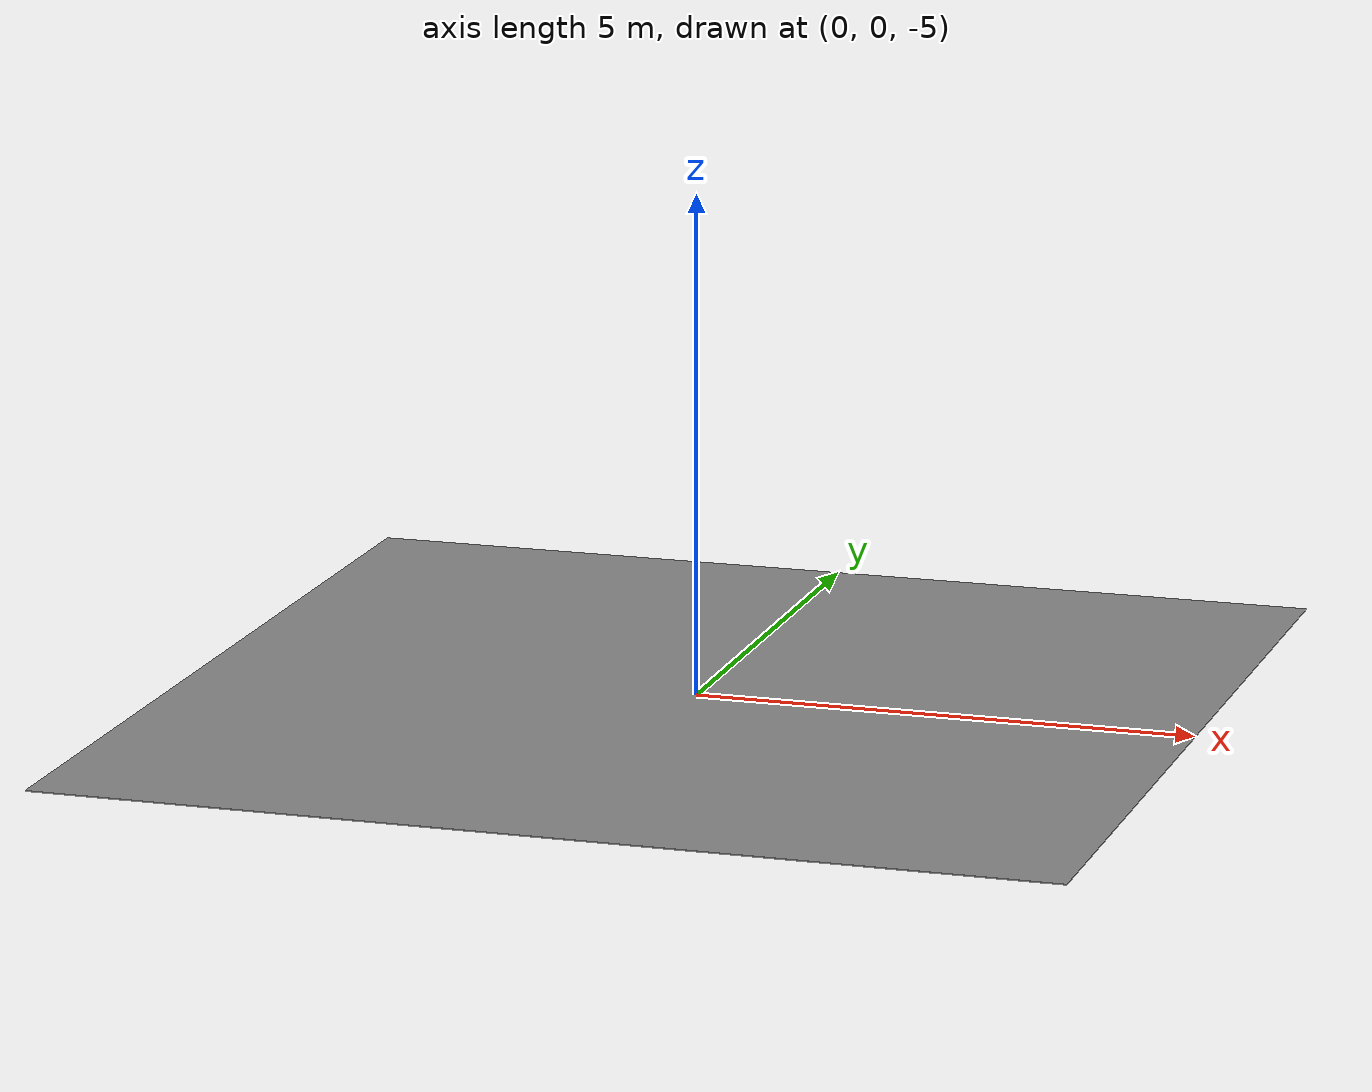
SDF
<?xml version='1.0'?>
<sdf version='1.5'>
  <model name='collision_tank'>
    <link name='link_0'>
      <pose frame=''>0 0 0 0 -0 0</pose>
      <inertial>
        <mass>1</mass>
        <pose frame=''>0 0 0 0 -0 0</pose>
        <inertia>
          <ixx>1</ixx>
          <ixy>0</ixy>
          <ixz>0</ixz>
          <iyy>1</iyy>
          <iyz>0</iyz>
          <izz>1</izz>
        </inertia>
      </inertial>
      <self_collide>0</self_collide>
      <kinematic>0</kinematic>
      <gravity>1</gravity>
      <visual name='visual'>
        <pose frame=''>0 0 -5.005 0 -0 0</pose>
        <geometry>
          <box>
            <size>10.02 10.02 0.01</size>
          </box>
        </geometry>
        <material>
          <lighting>1</lighting>
          <script>
            <uri>file://media/materials/scripts/gazebo.material</uri>
            <name>Gazebo/Grey</name>
          </script>
          <ambient>0.3 0.3 0.3 1</ambient>
          <diffuse>0.7 0.7 0.7 1</diffuse>
          <specular>0.01 0.01 0.01 1</specular>
          <emissive>0 0 0 1</emissive>
          <shader type='vertex'>
            <normal_map>__default__</normal_map>
          </shader>
        </material>
        <cast_shadows>1</cast_shadows>
        <transparency>0</transparency>
      </visual>
      <collision name='collision_2'>
        <laser_retro>0</laser_retro>
        <max_contacts>10</max_contacts>
        <pose frame=''>0 5.005 0 1.5708 -0 0</pose>
        <geometry>
          <box>
            <size>10.02 10.02 0.01</size>
          </box>
        </geometry>
        <surface>
          <friction>
            <ode>
              <mu>1</mu>
              <mu2>1</mu2>
              <fdir1>0 0 0</fdir1>
              <slip1>0</slip1>
              <slip2>0</slip2>
            </ode>
          </friction>
          <bounce>
            <restitution_coefficient>0</restitution_coefficient>
            <threshold>1e+06</threshold>
          </bounce>
          <contact>
            <collide_without_contact>0</collide_without_contact>
            <collide_without_contact_bitmask>1</collide_without_contact_bitmask>
            <collide_bitmask>1</collide_bitmask>
            <ode>
              <soft_cfm>0</soft_cfm>
              <soft_erp>0.2</soft_erp>
              <kp>1e+13</kp>
              <kd>1</kd>
              <max_vel>0.01</max_vel>
              <min_depth>0</min_depth>
            </ode>
            <bullet>
              <split_impulse>1</split_impulse>
              <split_impulse_penetration_threshold>-0.01</split_impulse_penetration_threshold>
              <soft_cfm>0</soft_cfm>
              <soft_erp>0.2</soft_erp>
              <kp>1e+13</kp>
              <kd>1</kd>
            </bullet>
          </contact>
        </surface>
      </collision>
      <collision name='collision_1'>
        <laser_retro>0</laser_retro>
        <max_contacts>10</max_contacts>
        <pose frame=''>-5.005 0 0 3.14159 1.57079 3.14159</pose>
        <geometry>
          <box>
            <size>10.02 10.02 0.01</size>
          </box>
        </geometry>
        <surface>
          <friction>
            <ode>
              <mu>1</mu>
              <mu2>1</mu2>
              <fdir1>0 0 0</fdir1>
              <slip1>0</slip1>
              <slip2>0</slip2>
            </ode>
          </friction>
          <bounce>
            <restitution_coefficient>0</restitution_coefficient>
            <threshold>1e+06</threshold>
          </bounce>
          <contact>
            <collide_without_contact>0</collide_without_contact>
            <collide_without_contact_bitmask>1</collide_without_contact_bitmask>
            <collide_bitmask>1</collide_bitmask>
            <ode>
              <soft_cfm>0</soft_cfm>
              <soft_erp>0.2</soft_erp>
              <kp>1e+13</kp>
              <kd>1</kd>
              <max_vel>0.01</max_vel>
              <min_depth>0</min_depth>
            </ode>
            <bullet>
              <split_impulse>1</split_impulse>
              <split_impulse_penetration_threshold>-0.01</split_impulse_penetration_threshold>
              <soft_cfm>0</soft_cfm>
              <soft_erp>0.2</soft_erp>
              <kp>1e+13</kp>
              <kd>1</kd>
            </bullet>
          </contact>
        </surface>
      </collision>
      <collision name='collision_3'>
        <laser_retro>0</laser_retro>
        <max_contacts>10</max_contacts>
        <pose frame=''>0 -5.005 0 1.5708 -0 0</pose>
        <geometry>
          <box>
            <size>10.02 10.02 0.01</size>
          </box>
        </geometry>
        <surface>
          <friction>
            <ode>
              <mu>1</mu>
              <mu2>1</mu2>
              <fdir1>0 0 0</fdir1>
              <slip1>0</slip1>
              <slip2>0</slip2>
            </ode>
          </friction>
          <bounce>
            <restitution_coefficient>0</restitution_coefficient>
            <threshold>1e+06</threshold>
          </bounce>
          <contact>
            <collide_without_contact>0</collide_without_contact>
            <collide_without_contact_bitmask>1</collide_without_contact_bitmask>
            <collide_bitmask>1</collide_bitmask>
            <ode>
              <soft_cfm>0</soft_cfm>
              <soft_erp>0.2</soft_erp>
              <kp>1e+13</kp>
              <kd>1</kd>
              <max_vel>0.01</max_vel>
              <min_depth>0</min_depth>
            </ode>
            <bullet>
              <split_impulse>1</split_impulse>
              <split_impulse_penetration_threshold>-0.01</split_impulse_penetration_threshold>
              <soft_cfm>0</soft_cfm>
              <soft_erp>0.2</soft_erp>
              <kp>1e+13</kp>
              <kd>1</kd>
            </bullet>
          </contact>
        </surface>
      </collision>
      <collision name='collision'>
        <laser_retro>0</laser_retro>
        <max_contacts>10</max_contacts>
        <pose frame=''>0 0 -5.005 0 -0 0</pose>
        <geometry>
          <box>
            <size>10.02 10.02 0.01</size>
          </box>
        </geometry>
        <surface>
          <friction>
            <ode>
              <mu>1</mu>
              <mu2>1</mu2>
              <fdir1>0 0 0</fdir1>
              <slip1>0</slip1>
              <slip2>0</slip2>
            </ode>
          </friction>
          <bounce>
            <restitution_coefficient>0</restitution_coefficient>
            <threshold>1e+06</threshold>
          </bounce>
          <contact>
            <collide_without_contact>0</collide_without_contact>
            <collide_without_contact_bitmask>1</collide_without_contact_bitmask>
            <collide_bitmask>1</collide_bitmask>
            <ode>
              <soft_cfm>0</soft_cfm>
              <soft_erp>0.2</soft_erp>
              <kp>1e+13</kp>
              <kd>1</kd>
              <max_vel>0.01</max_vel>
              <min_depth>0</min_depth>
            </ode>
            <bullet>
              <split_impulse>1</split_impulse>
              <split_impulse_penetration_threshold>-0.01</split_impulse_penetration_threshold>
              <soft_cfm>0</soft_cfm>
              <soft_erp>0.2</soft_erp>
              <kp>1e+13</kp>
              <kd>1</kd>
            </bullet>
          </contact>
        </surface>
      </collision>
      <collision name='collision_4'>
        <laser_retro>0</laser_retro>
        <max_contacts>10</max_contacts>
        <pose frame=''>5.005 0 0 3.14159 1.57079 3.14159</pose>
        <geometry>
          <box>
            <size>10.02 10.02 0.01</size>
          </box>
        </geometry>
        <surface>
          <friction>
            <ode>
              <mu>1</mu>
              <mu2>1</mu2>
              <fdir1>0 0 0</fdir1>
              <slip1>0</slip1>
              <slip2>0</slip2>
            </ode>
          </friction>
          <bounce>
            <restitution_coefficient>0</restitution_coefficient>
            <threshold>1e+06</threshold>
          </bounce>
          <contact>
            <collide_without_contact>0</collide_without_contact>
            <collide_without_contact_bitmask>1</collide_without_contact_bitmask>
            <collide_bitmask>1</collide_bitmask>
            <ode>
              <soft_cfm>0</soft_cfm>
              <soft_erp>0.2</soft_erp>
              <kp>1e+13</kp>
              <kd>1</kd>
              <max_vel>0.01</max_vel>
              <min_depth>0</min_depth>
            </ode>
            <bullet>
              <split_impulse>1</split_impulse>
              <split_impulse_penetration_threshold>-0.01</split_impulse_penetration_threshold>
              <soft_cfm>0</soft_cfm>
              <soft_erp>0.2</soft_erp>
              <kp>1e+13</kp>
              <kd>1</kd>
            </bullet>
          </contact>
        </surface>
      </collision>
      <collision name='collision_5'>
        <laser_retro>0</laser_retro>
        <max_contacts>10</max_contacts>
        <pose frame=''>0 0 5.005 0 -0 0</pose>
        <geometry>
          <box>
            <size>10.02 10.02 0.01</size>
          </box>
        </geometry>
        <surface>
          <friction>
            <ode>
              <mu>1</mu>
              <mu2>1</mu2>
              <fdir1>0 0 0</fdir1>
              <slip1>0</slip1>
              <slip2>0</slip2>
            </ode>
          </friction>
          <bounce>
            <restitution_coefficient>0</restitution_coefficient>
            <threshold>1e+06</threshold>
          </bounce>
          <contact>
            <collide_without_contact>0</collide_without_contact>
            <collide_without_contact_bitmask>1</collide_without_contact_bitmask>
            <collide_bitmask>1</collide_bitmask>
            <ode>
              <soft_cfm>0</soft_cfm>
              <soft_erp>0.2</soft_erp>
              <kp>1e+13</kp>
              <kd>1</kd>
              <max_vel>0.01</max_vel>
              <min_depth>0</min_depth>
            </ode>
            <bullet>
              <split_impulse>1</split_impulse>
              <split_impulse_penetration_threshold>-0.01</split_impulse_penetration_threshold>
              <soft_cfm>0</soft_cfm>
              <soft_erp>0.2</soft_erp>
              <kp>1e+13</kp>
              <kd>1</kd>
            </bullet>
          </contact>
        </surface>
      </collision>
    </link>
    <static>1</static>
    <allow_auto_disable>1</allow_auto_disable>
  </model>
</sdf>
